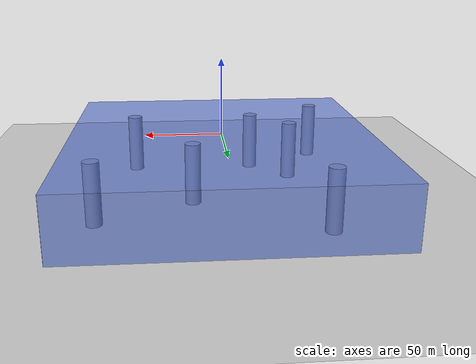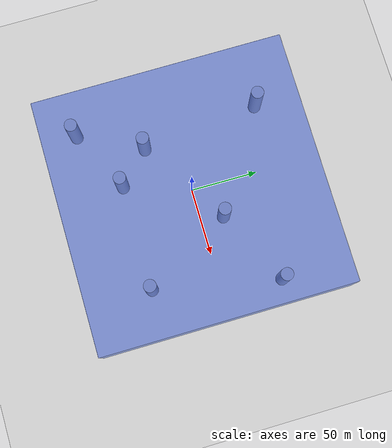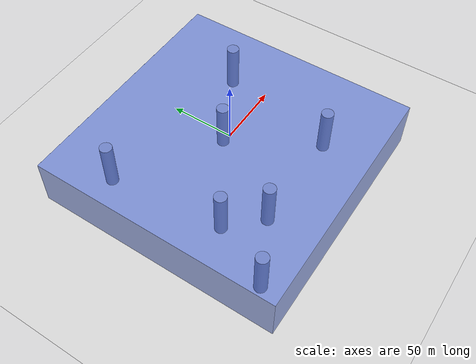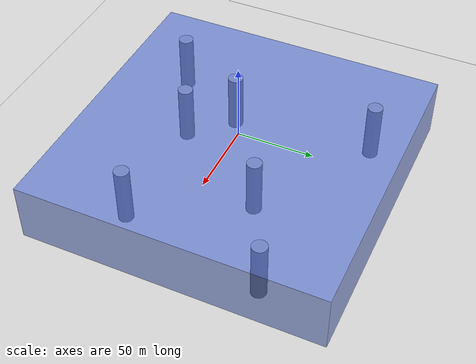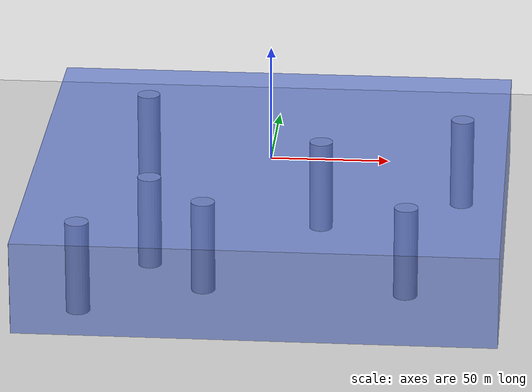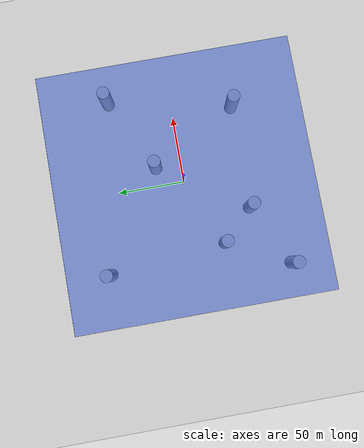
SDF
<?xml version="1.0" ?>
<sdf version="1.5">
<world name="default">
    <gui>
      <camera name="user_camera">
        <pose>10 11 10 0 0 -2.356</pose>
      </camera>
    </gui>

    <scene>
      <ambient> 0.25 0.3 0.5 1</ambient>
      <grid>false</grid>
    </scene>

    <light type="directional" name="sun">
      <cast_shadows>true</cast_shadows>
      <pose>0 0 100 0 0 0</pose>
      <diffuse>0.8 0.8 0.8 1</diffuse>
      <specular>0.2 0.2 0.2 1</specular>
      <attenuation>
        <range>1000</range>
        <constant>0.9</constant>
        <linear>0.01</linear>
        <quadratic>0.001</quadratic>
      </attenuation>
      <direction>-0.5 0.1 -0.9</direction>
    </light>

    <model name="ground_plane">
      <pose>0 0 -40 0 0 0</pose>
      <static>true</static>
      <link name="link">
        <collision name="collision">
          <geometry>
            <plane>
              <normal>0 0 1</normal>
              <size>200 200</size>
            </plane>
          </geometry>
          <surface>
            <contact>
              <collide_bitmask>0xffff</collide_bitmask>
            </contact>
            <friction>
              <ode>
                <mu>100</mu>
                <mu2>50</mu2>
              </ode>
            </friction>
          </surface>
        </collision>
        <visual name="visual">
          <cast_shadows>false</cast_shadows>
          <geometry>
            <plane>
              <normal>0 0 1</normal>
              <size>200 200</size>
            </plane>
          </geometry>
          <material>
            <script>
              <uri>file://media/materials/scripts/gazebo.material</uri>
              <name>Gazebo/Grey</name>
            </script>
          </material>
        </visual>
      </link>
    </model>

    <model name="ceiling_plane">
      <static>true</static>
      <pose>0 0 0 0 0 0</pose>
      <link name="link">
        <visual name="visual">
          <cast_shadows>false</cast_shadows>
          <geometry>
            <box>
              <size>200 200 .1</size>
            </box>
          </geometry>
          <material>
            <script>
              <uri>file://media/materials/scripts/gazebo.material</uri>
              <name>Gazebo/BlueTransparent</name>
            </script>
          </material>
        </visual>

        <visual name="visual_sideA">
          <pose>100.05 0 -20 0 0 0</pose>
          <cast_shadows>false</cast_shadows>
          <geometry>
            <box>
              <size>0.1 200 39.9</size>
            </box>
          </geometry>
          <material>
            <script>
              <uri>file://media/materials/scripts/gazebo.material</uri>
              <name>Gazebo/BlueTransparent</name>
            </script>
          </material>
        </visual>

        <visual name="visual_sideB">
          <pose>-100.05 0 -20 0 0 0</pose>
          <cast_shadows>false</cast_shadows>
          <geometry>
            <box>
              <size>0.1 200 39.9</size>
            </box>
          </geometry>
          <material>
            <script>
              <uri>file://media/materials/scripts/gazebo.material</uri>
              <name>Gazebo/BlueTransparent</name>
            </script>
          </material>
        </visual>

        <visual name="visual_sideC">
          <pose>0 100.05 -20 0 0 0</pose>
          <cast_shadows>false</cast_shadows>
          <geometry>
            <box>
              <size>200 0.1 39.9</size>
            </box>
          </geometry>
          <material>
            <script>
              <uri>file://media/materials/scripts/gazebo.material</uri>
              <name>Gazebo/BlueTransparent</name>
            </script>
          </material>
        </visual>

        <visual name="visual_sideD">
          <pose>0 -100.05 -20 0 0 0</pose>
          <cast_shadows>false</cast_shadows>
          <geometry>
            <box>
              <size>200 0.1 39.9</size>
            </box>
          </geometry>
          <material>
            <script>
              <uri>file://media/materials/scripts/gazebo.material</uri>
              <name>Gazebo/BlueTransparent</name>
            </script>
          </material>
        </visual>

        <visual name = "obstacle1">
          <pose>-75 -75 -20 0 0 0</pose>

          <origin>0 0 0</origin>
          <cast_shadows>false</cast_shadows>
          <geometry>
            <cylinder>
              <radius>5</radius>
              <length>40</length>
            </cylinder>
          </geometry>
          <material>
            <color rgba = "255 0 0 255"/>
          </material>
        </visual>
        <collision name="collision_obstacle1">
          <geometry>
            <cylinder>
              <radius>5</radius>
              <length>40</length>
            </cylinder>
          </geometry>
        </collision>

        <visual name = "obstacle2">
          <pose>-25 -50 -20 0 0 0</pose>

          <origin>0 0 0</origin>
          <cast_shadows>false</cast_shadows>
          <geometry>
            <cylinder>
              <radius>5</radius>
              <length>40</length>
            </cylinder>
          </geometry>
          <material>
            <color rgba = "255 0 0 255"/>
          </material>
        </visual>
        <collision name="collision_obstacle2">
          <geometry>
            <cylinder>
              <radius>5</radius>
              <length>40</length>
            </cylinder>
          </geometry>
        </collision>

        <visual name = "obstacle3">
          <pose>-50 -25 -20 0 0 0</pose>
          <origin>0 0 0</origin>
          <cast_shadows>false</cast_shadows>
          <geometry>
            <cylinder>
              <radius>5</radius>
              <length>40</length>
            </cylinder>
          </geometry>
          <material name = "obstacle-red">
            <color rgba = "255 0 0 255"/>
          </material>
        </visual>
        <collision name="collision_obstacle3">
          <geometry>
            <cylinder>
              <radius>5</radius>
              <length>40</length>
            </cylinder>
          </geometry>
        </collision>

        <visual name = "obstacle4">
          <pose>-60 70 -20 0 0 0</pose>
          <origin>0 0 0</origin>
          <cast_shadows>false</cast_shadows>
          <geometry>
            <cylinder>
              <radius>5</radius>
              <length>40</length>
            </cylinder>
          </geometry>
          <material>
            <color rgba = "255 0 0 255"/>
          </material>
        </visual>
        <collision name="collision_obstacle4">
          <geometry>
            <cylinder>
              <radius>5</radius>
              <length>40</length>
            </cylinder>
          </geometry>
        </collision>

        <visual name = "obstacle5">
          <pose>20 20 -20 0 0 0</pose>
          <origin>0 0 0</origin>
          <cast_shadows>false</cast_shadows>
          <geometry>
            <cylinder>
              <radius>5</radius>
              <length>40</length>
            </cylinder>
          </geometry>
          <material name = "obstacle-red">
            <color rgba = "255 0 0 255"/>
          </material>
        </visual>
        <collision name="collision_obstacle5">
          <geometry>
            <cylinder>
              <radius>5</radius>
              <length>40</length>
            </cylinder>
          </geometry>
        </collision>

        <visual name = "obstacle6">
          <pose>80 50 -20 0 0 0</pose>
          <origin>0 0 0</origin>
          <cast_shadows>false</cast_shadows>
          <geometry>
            <cylinder>
              <radius>5</radius>
              <length>40</length>
            </cylinder>
          </geometry>
          <material name = "obstacle-red">
            <color rgba = "255 0 0 255"/>
          </material>
        </visual>
        <collision name="collision_obstacle6">
          <geometry>
            <cylinder>
              <radius>5</radius>
              <length>40</length>
            </cylinder>
          </geometry>
        </collision>

        <visual name = "obstacle7">
          <pose>60 -50 -20 0 0 0</pose>
          <origin>0 0 0</origin>
          <cast_shadows>false</cast_shadows>
          <geometry>
            <cylinder>
              <radius>5</radius>
              <length>40</length>
            </cylinder>
          </geometry>
          <material>
            <color rgba = "255 0 0 255"/>
          </material>
        </visual>
        <collision name="collision_obstacle7">
          <geometry>
            <cylinder>
              <radius>5</radius>
              <length>40</length>
            </cylinder>
          </geometry>
        </collision>

      </link>
    </model>

    <physics type='ode'>
      <real_time_factor>1</real_time_factor>
      <real_time_update_rate>1000</real_time_update_rate>
      <max_step_size>0.001</max_step_size>
      <real_time_factor>1</real_time_factor>
      <real_time_update_rate>1000.0</real_time_update_rate>
      <gravity>0 0 -9.81</gravity>
      <hydrodynamics>true</hydrodynamics>
      <viscosity>
        <dynamic_viscosity>1e-6</dynamic_viscosity>
        <kinematic_viscosity>1e-6</kinematic_viscosity>
      </viscosity>
    </physics>

  </world>
</sdf>
